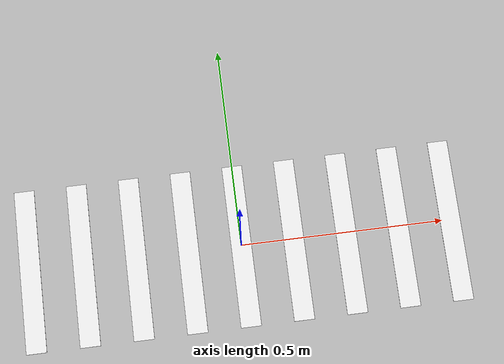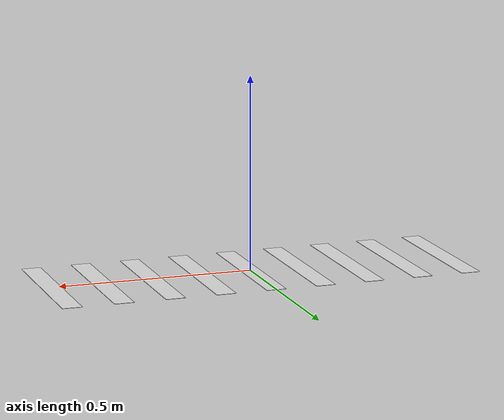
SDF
<?xml version='1.0'?>
<sdf version='1.6'>
  <model name='zebraCrossing9'>
    <link name='link_0'>
      <inertial>
        <mass>1</mass>
        <inertia>
          <ixx>0.166667</ixx>
          <ixy>0</ixy>
          <ixz>0</ixz>
          <iyy>0.166667</iyy>
          <iyz>0</iyz>
          <izz>0.166667</izz>
        </inertia>
        <pose frame=''>0 0 0 0 -0 0</pose>
      </inertial>
      <pose frame=''>0 0 0 0 -0 0</pose>
      <gravity>1</gravity>
      <self_collide>0</self_collide>
      <kinematic>0</kinematic>
      <enable_wind>0</enable_wind>
      <visual name='visual'>
        <pose frame=''>0 0 0 0 -0 0</pose>
        <geometry>
          <box>
            <size>0.05 0.4 0.001</size>
          </box>
        </geometry>
        <material>
          <lighting>1</lighting>
          <script>
            <uri>file://media/materials/scripts/gazebo.material</uri>
            <name>Gazebo/White</name>
          </script>
          <shader type='pixel'>
            <normal_map>__default__</normal_map>
          </shader>
          <ambient>1 1 1 1</ambient>
          <diffuse>1 1 1 1</diffuse>
          <specular>0.01 0.01 0.01 1</specular>
          <emissive>0 0 0 1</emissive>
        </material>
        <transparency>0</transparency>
        <cast_shadows>0</cast_shadows>
      </visual>
      <visual name='ModelPreview_0::link_0::visual_1'>
        <pose frame=''>0.13 0 0 0 -0 0</pose>
        <geometry>
          <box>
            <size>0.05 0.4 0.001</size>
          </box>
        </geometry>
        <material>
          <lighting>1</lighting>
          <script>
            <uri>file://media/materials/scripts/gazebo.material</uri>
            <name>Gazebo/White</name>
          </script>
          <shader type='pixel'>
            <normal_map>__default__</normal_map>
          </shader>
          <ambient>1 1 1 1</ambient>
          <diffuse>1 1 1 1</diffuse>
          <specular>0.01 0.01 0.01 1</specular>
          <emissive>0 0 0 1</emissive>
        </material>
        <transparency>0</transparency>
        <cast_shadows>0</cast_shadows>
      </visual>
      <visual name='ModelPreview_0::link_0::visual_2'>
        <pose frame=''>0.26 0 0 0 -0 0</pose>
        <geometry>
          <box>
            <size>0.05 0.4 0.001</size>
          </box>
        </geometry>
        <material>
          <lighting>1</lighting>
          <script>
            <uri>file://media/materials/scripts/gazebo.material</uri>
            <name>Gazebo/White</name>
          </script>
          <shader type='pixel'>
            <normal_map>__default__</normal_map>
          </shader>
          <ambient>1 1 1 1</ambient>
          <diffuse>1 1 1 1</diffuse>
          <specular>0.01 0.01 0.01 1</specular>
          <emissive>0 0 0 1</emissive>
        </material>
        <transparency>0</transparency>
        <cast_shadows>0</cast_shadows>
      </visual>
      <visual name='ModelPreview_0::link_0::visual_3'>
        <pose frame=''>0.39 0 0 0 -0 0</pose>
        <geometry>
          <box>
            <size>0.05 0.4 0.001</size>
          </box>
        </geometry>
        <material>
          <lighting>1</lighting>
          <script>
            <uri>file://media/materials/scripts/gazebo.material</uri>
            <name>Gazebo/White</name>
          </script>
          <shader type='pixel'>
            <normal_map>__default__</normal_map>
          </shader>
          <ambient>1 1 1 1</ambient>
          <diffuse>1 1 1 1</diffuse>
          <specular>0.01 0.01 0.01 1</specular>
          <emissive>0 0 0 1</emissive>
        </material>
        <transparency>0</transparency>
        <cast_shadows>0</cast_shadows>
      </visual>
      <visual name='ModelPreview_0::link_0::visual_4'>
        <pose frame=''>0.52 0 0 0 -0 0</pose>
        <geometry>
          <box>
            <size>0.05 0.4 0.001</size>
          </box>
        </geometry>
        <material>
          <lighting>1</lighting>
          <script>
            <uri>file://media/materials/scripts/gazebo.material</uri>
            <name>Gazebo/White</name>
          </script>
          <shader type='pixel'>
            <normal_map>__default__</normal_map>
          </shader>
          <ambient>1 1 1 1</ambient>
          <diffuse>1 1 1 1</diffuse>
          <specular>0.01 0.01 0.01 1</specular>
          <emissive>0 0 0 1</emissive>
        </material>
        <transparency>0</transparency>
        <cast_shadows>0</cast_shadows>
      </visual>
      <visual name='ModelPreview_0::link_0::visual_5'>
        <pose frame=''>-0.13 0 0 0 -0 0</pose>
        <geometry>
          <box>
            <size>0.05 0.4 0.001</size>
          </box>
        </geometry>
        <material>
          <lighting>1</lighting>
          <script>
            <uri>file://media/materials/scripts/gazebo.material</uri>
            <name>Gazebo/White</name>
          </script>
          <shader type='pixel'>
            <normal_map>__default__</normal_map>
          </shader>
          <ambient>1 1 1 1</ambient>
          <diffuse>1 1 1 1</diffuse>
          <specular>0.01 0.01 0.01 1</specular>
          <emissive>0 0 0 1</emissive>
        </material>
        <transparency>0</transparency>
        <cast_shadows>0</cast_shadows>
      </visual>
      <visual name='ModelPreview_0::link_0::visual_6'>
        <pose frame=''>-0.26 0 0 0 -0 0</pose>
        <geometry>
          <box>
            <size>0.05 0.4 0.001</size>
          </box>
        </geometry>
        <material>
          <lighting>1</lighting>
          <script>
            <uri>file://media/materials/scripts/gazebo.material</uri>
            <name>Gazebo/White</name>
          </script>
          <shader type='pixel'>
            <normal_map>__default__</normal_map>
          </shader>
          <ambient>1 1 1 1</ambient>
          <diffuse>1 1 1 1</diffuse>
          <specular>0.01 0.01 0.01 1</specular>
          <emissive>0 0 0 1</emissive>
        </material>
        <transparency>0</transparency>
        <cast_shadows>0</cast_shadows>
      </visual>
      <visual name='ModelPreview_0::link_0::visual_7'>
        <pose frame=''>-0.39 0 0 0 -0 0</pose>
        <geometry>
          <box>
            <size>0.05 0.4 0.001</size>
          </box>
        </geometry>
        <material>
          <lighting>1</lighting>
          <script>
            <uri>file://media/materials/scripts/gazebo.material</uri>
            <name>Gazebo/White</name>
          </script>
          <shader type='pixel'>
            <normal_map>__default__</normal_map>
          </shader>
          <ambient>1 1 1 1</ambient>
          <diffuse>1 1 1 1</diffuse>
          <specular>0.01 0.01 0.01 1</specular>
          <emissive>0 0 0 1</emissive>
        </material>
        <transparency>0</transparency>
        <cast_shadows>0</cast_shadows>
      </visual>
      <visual name='ModelPreview_0::link_0::visual_8'>
        <pose frame=''>-0.52 0 0 0 -0 0</pose>
        <geometry>
          <box>
            <size>0.05 0.4 0.001</size>
          </box>
        </geometry>
        <material>
          <lighting>1</lighting>
          <script>
            <uri>file://media/materials/scripts/gazebo.material</uri>
            <name>Gazebo/White</name>
          </script>
          <shader type='pixel'>
            <normal_map>__default__</normal_map>
          </shader>
          <ambient>1 1 1 1</ambient>
          <diffuse>1 1 1 1</diffuse>
          <specular>0.01 0.01 0.01 1</specular>
          <emissive>0 0 0 1</emissive>
        </material>
        <transparency>0</transparency>
        <cast_shadows>0</cast_shadows>
      </visual>
      <collision name='collision'>
        <laser_retro>0</laser_retro>
        <max_contacts>10</max_contacts>
        <pose frame=''>0 0 0 0 -0 0</pose>
        <geometry>
          <box>
            <size>0.05 0.4 0.001</size>
          </box>
        </geometry>
        <surface>
          <friction>
            <ode>
              <mu>1</mu>
              <mu2>1</mu2>
              <fdir1>0 0 0</fdir1>
              <slip1>0</slip1>
              <slip2>0</slip2>
            </ode>
            <torsional>
              <coefficient>1</coefficient>
              <patch_radius>0</patch_radius>
              <surface_radius>0</surface_radius>
              <use_patch_radius>1</use_patch_radius>
              <ode>
                <slip>0</slip>
              </ode>
            </torsional>
          </friction>
          <bounce>
            <restitution_coefficient>0</restitution_coefficient>
            <threshold>1e+06</threshold>
          </bounce>
          <contact>
            <collide_without_contact>0</collide_without_contact>
            <collide_without_contact_bitmask>1</collide_without_contact_bitmask>
            <collide_bitmask>1</collide_bitmask>
            <ode>
              <soft_cfm>0</soft_cfm>
              <soft_erp>0.2</soft_erp>
              <kp>1e+13</kp>
              <kd>1</kd>
              <max_vel>0.01</max_vel>
              <min_depth>0</min_depth>
            </ode>
            <bullet>
              <split_impulse>1</split_impulse>
              <split_impulse_penetration_threshold>-0.01</split_impulse_penetration_threshold>
              <soft_cfm>0</soft_cfm>
              <soft_erp>0.2</soft_erp>
              <kp>1e+13</kp>
              <kd>1</kd>
            </bullet>
          </contact>
        </surface>
      </collision>
      <collision name='collision_1'>
        <laser_retro>0</laser_retro>
        <max_contacts>10</max_contacts>
        <pose frame=''>0.13 0 0 0 -0 0</pose>
        <geometry>
          <box>
            <size>0.05 0.4 0.001</size>
          </box>
        </geometry>
        <surface>
          <friction>
            <ode>
              <mu>1</mu>
              <mu2>1</mu2>
              <fdir1>0 0 0</fdir1>
              <slip1>0</slip1>
              <slip2>0</slip2>
            </ode>
            <torsional>
              <coefficient>1</coefficient>
              <patch_radius>0</patch_radius>
              <surface_radius>0</surface_radius>
              <use_patch_radius>1</use_patch_radius>
              <ode>
                <slip>0</slip>
              </ode>
            </torsional>
          </friction>
          <bounce>
            <restitution_coefficient>0</restitution_coefficient>
            <threshold>1e+06</threshold>
          </bounce>
          <contact>
            <collide_without_contact>0</collide_without_contact>
            <collide_without_contact_bitmask>1</collide_without_contact_bitmask>
            <collide_bitmask>1</collide_bitmask>
            <ode>
              <soft_cfm>0</soft_cfm>
              <soft_erp>0.2</soft_erp>
              <kp>1e+13</kp>
              <kd>1</kd>
              <max_vel>0.01</max_vel>
              <min_depth>0</min_depth>
            </ode>
            <bullet>
              <split_impulse>1</split_impulse>
              <split_impulse_penetration_threshold>-0.01</split_impulse_penetration_threshold>
              <soft_cfm>0</soft_cfm>
              <soft_erp>0.2</soft_erp>
              <kp>1e+13</kp>
              <kd>1</kd>
            </bullet>
          </contact>
        </surface>
      </collision>
      <collision name='collision_2'>
        <laser_retro>0</laser_retro>
        <max_contacts>10</max_contacts>
        <pose frame=''>0.26 0 0 0 -0 0</pose>
        <geometry>
          <box>
            <size>0.05 0.4 0.001</size>
          </box>
        </geometry>
        <surface>
          <friction>
            <ode>
              <mu>1</mu>
              <mu2>1</mu2>
              <fdir1>0 0 0</fdir1>
              <slip1>0</slip1>
              <slip2>0</slip2>
            </ode>
            <torsional>
              <coefficient>1</coefficient>
              <patch_radius>0</patch_radius>
              <surface_radius>0</surface_radius>
              <use_patch_radius>1</use_patch_radius>
              <ode>
                <slip>0</slip>
              </ode>
            </torsional>
          </friction>
          <bounce>
            <restitution_coefficient>0</restitution_coefficient>
            <threshold>1e+06</threshold>
          </bounce>
          <contact>
            <collide_without_contact>0</collide_without_contact>
            <collide_without_contact_bitmask>1</collide_without_contact_bitmask>
            <collide_bitmask>1</collide_bitmask>
            <ode>
              <soft_cfm>0</soft_cfm>
              <soft_erp>0.2</soft_erp>
              <kp>1e+13</kp>
              <kd>1</kd>
              <max_vel>0.01</max_vel>
              <min_depth>0</min_depth>
            </ode>
            <bullet>
              <split_impulse>1</split_impulse>
              <split_impulse_penetration_threshold>-0.01</split_impulse_penetration_threshold>
              <soft_cfm>0</soft_cfm>
              <soft_erp>0.2</soft_erp>
              <kp>1e+13</kp>
              <kd>1</kd>
            </bullet>
          </contact>
        </surface>
      </collision>
      <collision name='collision_3'>
        <laser_retro>0</laser_retro>
        <max_contacts>10</max_contacts>
        <pose frame=''>0.39 0 0 0 -0 0</pose>
        <geometry>
          <box>
            <size>0.05 0.4 0.001</size>
          </box>
        </geometry>
        <surface>
          <friction>
            <ode>
              <mu>1</mu>
              <mu2>1</mu2>
              <fdir1>0 0 0</fdir1>
              <slip1>0</slip1>
              <slip2>0</slip2>
            </ode>
            <torsional>
              <coefficient>1</coefficient>
              <patch_radius>0</patch_radius>
              <surface_radius>0</surface_radius>
              <use_patch_radius>1</use_patch_radius>
              <ode>
                <slip>0</slip>
              </ode>
            </torsional>
          </friction>
          <bounce>
            <restitution_coefficient>0</restitution_coefficient>
            <threshold>1e+06</threshold>
          </bounce>
          <contact>
            <collide_without_contact>0</collide_without_contact>
            <collide_without_contact_bitmask>1</collide_without_contact_bitmask>
            <collide_bitmask>1</collide_bitmask>
            <ode>
              <soft_cfm>0</soft_cfm>
              <soft_erp>0.2</soft_erp>
              <kp>1e+13</kp>
              <kd>1</kd>
              <max_vel>0.01</max_vel>
              <min_depth>0</min_depth>
            </ode>
            <bullet>
              <split_impulse>1</split_impulse>
              <split_impulse_penetration_threshold>-0.01</split_impulse_penetration_threshold>
              <soft_cfm>0</soft_cfm>
              <soft_erp>0.2</soft_erp>
              <kp>1e+13</kp>
              <kd>1</kd>
            </bullet>
          </contact>
        </surface>
      </collision>
      <collision name='collision_4'>
        <laser_retro>0</laser_retro>
        <max_contacts>10</max_contacts>
        <pose frame=''>0.52 0 0 0 -0 0</pose>
        <geometry>
          <box>
            <size>0.05 0.4 0.001</size>
          </box>
        </geometry>
        <surface>
          <friction>
            <ode>
              <mu>1</mu>
              <mu2>1</mu2>
              <fdir1>0 0 0</fdir1>
              <slip1>0</slip1>
              <slip2>0</slip2>
            </ode>
            <torsional>
              <coefficient>1</coefficient>
              <patch_radius>0</patch_radius>
              <surface_radius>0</surface_radius>
              <use_patch_radius>1</use_patch_radius>
              <ode>
                <slip>0</slip>
              </ode>
            </torsional>
          </friction>
          <bounce>
            <restitution_coefficient>0</restitution_coefficient>
            <threshold>1e+06</threshold>
          </bounce>
          <contact>
            <collide_without_contact>0</collide_without_contact>
            <collide_without_contact_bitmask>1</collide_without_contact_bitmask>
            <collide_bitmask>1</collide_bitmask>
            <ode>
              <soft_cfm>0</soft_cfm>
              <soft_erp>0.2</soft_erp>
              <kp>1e+13</kp>
              <kd>1</kd>
              <max_vel>0.01</max_vel>
              <min_depth>0</min_depth>
            </ode>
            <bullet>
              <split_impulse>1</split_impulse>
              <split_impulse_penetration_threshold>-0.01</split_impulse_penetration_threshold>
              <soft_cfm>0</soft_cfm>
              <soft_erp>0.2</soft_erp>
              <kp>1e+13</kp>
              <kd>1</kd>
            </bullet>
          </contact>
        </surface>
      </collision>
      <collision name='collision_5'>
        <laser_retro>0</laser_retro>
        <max_contacts>10</max_contacts>
        <pose frame=''>-0.13 0 0 0 -0 0</pose>
        <geometry>
          <box>
            <size>0.05 0.4 0.001</size>
          </box>
        </geometry>
        <surface>
          <friction>
            <ode>
              <mu>1</mu>
              <mu2>1</mu2>
              <fdir1>0 0 0</fdir1>
              <slip1>0</slip1>
              <slip2>0</slip2>
            </ode>
            <torsional>
              <coefficient>1</coefficient>
              <patch_radius>0</patch_radius>
              <surface_radius>0</surface_radius>
              <use_patch_radius>1</use_patch_radius>
              <ode>
                <slip>0</slip>
              </ode>
            </torsional>
          </friction>
          <bounce>
            <restitution_coefficient>0</restitution_coefficient>
            <threshold>1e+06</threshold>
          </bounce>
          <contact>
            <collide_without_contact>0</collide_without_contact>
            <collide_without_contact_bitmask>1</collide_without_contact_bitmask>
            <collide_bitmask>1</collide_bitmask>
            <ode>
              <soft_cfm>0</soft_cfm>
              <soft_erp>0.2</soft_erp>
              <kp>1e+13</kp>
              <kd>1</kd>
              <max_vel>0.01</max_vel>
              <min_depth>0</min_depth>
            </ode>
            <bullet>
              <split_impulse>1</split_impulse>
              <split_impulse_penetration_threshold>-0.01</split_impulse_penetration_threshold>
              <soft_cfm>0</soft_cfm>
              <soft_erp>0.2</soft_erp>
              <kp>1e+13</kp>
              <kd>1</kd>
            </bullet>
          </contact>
        </surface>
      </collision>
      <collision name='collision_6'>
        <laser_retro>0</laser_retro>
        <max_contacts>10</max_contacts>
        <pose frame=''>-0.26 0 0 0 -0 0</pose>
        <geometry>
          <box>
            <size>0.05 0.4 0.001</size>
          </box>
        </geometry>
        <surface>
          <friction>
            <ode>
              <mu>1</mu>
              <mu2>1</mu2>
              <fdir1>0 0 0</fdir1>
              <slip1>0</slip1>
              <slip2>0</slip2>
            </ode>
            <torsional>
              <coefficient>1</coefficient>
              <patch_radius>0</patch_radius>
              <surface_radius>0</surface_radius>
              <use_patch_radius>1</use_patch_radius>
              <ode>
                <slip>0</slip>
              </ode>
            </torsional>
          </friction>
          <bounce>
            <restitution_coefficient>0</restitution_coefficient>
            <threshold>1e+06</threshold>
          </bounce>
          <contact>
            <collide_without_contact>0</collide_without_contact>
            <collide_without_contact_bitmask>1</collide_without_contact_bitmask>
            <collide_bitmask>1</collide_bitmask>
            <ode>
              <soft_cfm>0</soft_cfm>
              <soft_erp>0.2</soft_erp>
              <kp>1e+13</kp>
              <kd>1</kd>
              <max_vel>0.01</max_vel>
              <min_depth>0</min_depth>
            </ode>
            <bullet>
              <split_impulse>1</split_impulse>
              <split_impulse_penetration_threshold>-0.01</split_impulse_penetration_threshold>
              <soft_cfm>0</soft_cfm>
              <soft_erp>0.2</soft_erp>
              <kp>1e+13</kp>
              <kd>1</kd>
            </bullet>
          </contact>
        </surface>
      </collision>
      <collision name='collision_7'>
        <laser_retro>0</laser_retro>
        <max_contacts>10</max_contacts>
        <pose frame=''>-0.39 0 0 0 -0 0</pose>
        <geometry>
          <box>
            <size>0.05 0.4 0.001</size>
          </box>
        </geometry>
        <surface>
          <friction>
            <ode>
              <mu>1</mu>
              <mu2>1</mu2>
              <fdir1>0 0 0</fdir1>
              <slip1>0</slip1>
              <slip2>0</slip2>
            </ode>
            <torsional>
              <coefficient>1</coefficient>
              <patch_radius>0</patch_radius>
              <surface_radius>0</surface_radius>
              <use_patch_radius>1</use_patch_radius>
              <ode>
                <slip>0</slip>
              </ode>
            </torsional>
          </friction>
          <bounce>
            <restitution_coefficient>0</restitution_coefficient>
            <threshold>1e+06</threshold>
          </bounce>
          <contact>
            <collide_without_contact>0</collide_without_contact>
            <collide_without_contact_bitmask>1</collide_without_contact_bitmask>
            <collide_bitmask>1</collide_bitmask>
            <ode>
              <soft_cfm>0</soft_cfm>
              <soft_erp>0.2</soft_erp>
              <kp>1e+13</kp>
              <kd>1</kd>
              <max_vel>0.01</max_vel>
              <min_depth>0</min_depth>
            </ode>
            <bullet>
              <split_impulse>1</split_impulse>
              <split_impulse_penetration_threshold>-0.01</split_impulse_penetration_threshold>
              <soft_cfm>0</soft_cfm>
              <soft_erp>0.2</soft_erp>
              <kp>1e+13</kp>
              <kd>1</kd>
            </bullet>
          </contact>
        </surface>
      </collision>
      <collision name='collision_8'>
        <laser_retro>0</laser_retro>
        <max_contacts>10</max_contacts>
        <pose frame=''>-0.52 0 0 0 -0 0</pose>
        <geometry>
          <box>
            <size>0.05 0.4 0.001</size>
          </box>
        </geometry>
        <surface>
          <friction>
            <ode>
              <mu>1</mu>
              <mu2>1</mu2>
              <fdir1>0 0 0</fdir1>
              <slip1>0</slip1>
              <slip2>0</slip2>
            </ode>
            <torsional>
              <coefficient>1</coefficient>
              <patch_radius>0</patch_radius>
              <surface_radius>0</surface_radius>
              <use_patch_radius>1</use_patch_radius>
              <ode>
                <slip>0</slip>
              </ode>
            </torsional>
          </friction>
          <bounce>
            <restitution_coefficient>0</restitution_coefficient>
            <threshold>1e+06</threshold>
          </bounce>
          <contact>
            <collide_without_contact>0</collide_without_contact>
            <collide_without_contact_bitmask>1</collide_without_contact_bitmask>
            <collide_bitmask>1</collide_bitmask>
            <ode>
              <soft_cfm>0</soft_cfm>
              <soft_erp>0.2</soft_erp>
              <kp>1e+13</kp>
              <kd>1</kd>
              <max_vel>0.01</max_vel>
              <min_depth>0</min_depth>
            </ode>
            <bullet>
              <split_impulse>1</split_impulse>
              <split_impulse_penetration_threshold>-0.01</split_impulse_penetration_threshold>
              <soft_cfm>0</soft_cfm>
              <soft_erp>0.2</soft_erp>
              <kp>1e+13</kp>
              <kd>1</kd>
            </bullet>
          </contact>
        </surface>
      </collision>
    </link>
    <static>1</static>
    <allow_auto_disable>1</allow_auto_disable>
  </model>
</sdf>
